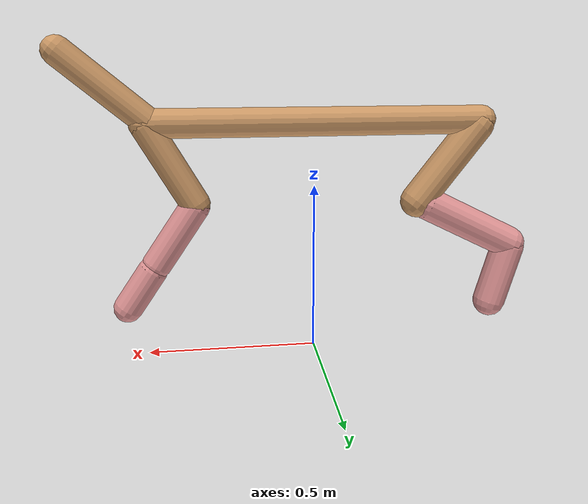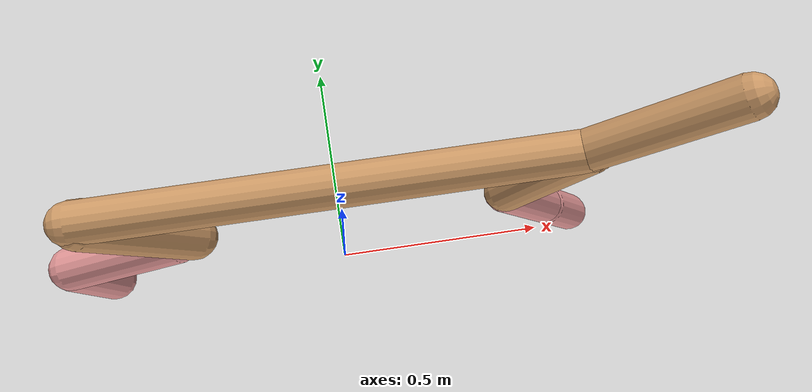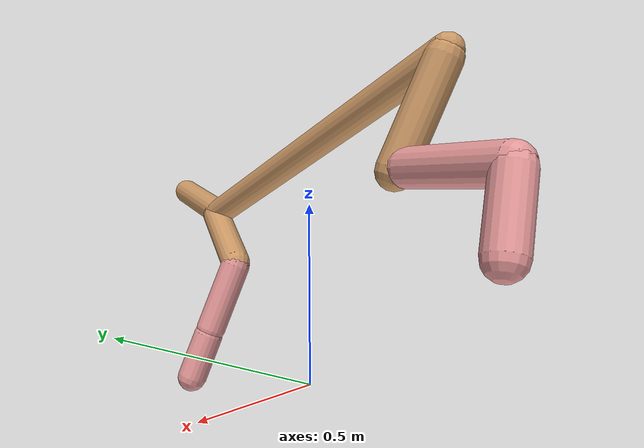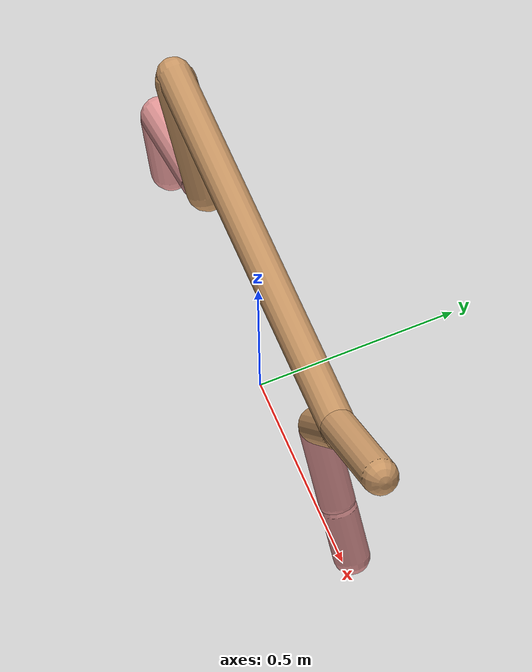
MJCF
<mujoco model="cheetah">
  <compiler angle="radian" coordinate="local" inertiafromgeom="true" settotalmass="14" />
  <default>
    <joint armature=".1" damping=".01" limited="true" solimplimit="0 .8 .03" solreflimit=".02 1" stiffness="8" />
    <geom conaffinity="0" condim="3" contype="1" friction="0.8 .1 .1" rgba="0.8 0.6 .4 1" solimp="0.0 0.8 0.01" solref="0.02 1" />
    <motor ctrllimited="true" ctrlrange="-1 1" />
  </default>
  <size nstack="300000" nuser_geom="1" />
  <option gravity="0 0 -9.81" timestep="0.01" />
  <worldbody>
    <body name="torso" pos="0.0 0.0 0.6878929719882558">
      <joint armature="0" axis="1 0 0" damping="0" limited="false" name="ignorex" pos="0 0 0" stiffness="0" type="slide" />
      <joint armature="0" axis="0 0 1" damping="0" limited="false" name="ignorez" pos="0 0 0" stiffness="0" type="slide" />
      <joint armature="0" axis="0 1 0" damping="0" limited="false" name="ignorey" pos="0 0 0" stiffness="0" type="hinge" />
      <geom fromto="-0.5 0.0 0.0 0.47986453482043556 0.0 0.0" name="torso" size="0.04226622839421597" type="capsule" />
      <geom axisangle="0 1 0 .87" name="head" pos="0.5798645348204355 0.0 0.1" size="0.04167315710623709 0.15" type="capsule" />

      <body name="bthigh" pos="-.5 0 0">
        <joint axis="0 1 0" damping="6" name="bthigh" pos="0 0 0" range="-.52 1.05" stiffness="240" type="hinge" />
        <geom axisangle="0 1 0 -3.8" name="bthigh" pos="0.09909291621796865 0.0 -0.12882079108335923" size="0.04946135999413521 0.1435122719816077" type="capsule" />
        <body name="bshin" pos="0.15818583243593728 0.0 -0.24764158216671844">
          <joint axis="0 1 0" damping="4.5" name="bshin" pos="0 0 0" range="-.785 .785" stiffness="180" type="hinge" />
          <geom axisangle="0 1 0 -2.03" name="bshin" pos="-0.1386234506284871 0.0 -0.06931172531424355" rgba="0.9 0.6 0.6 1" size="0.04946135999413521 0.14846097101545624" type="capsule" />
          <body name="bfoot" pos="-0.2772469012569742 0.0 -0.1386234506284871">
            <joint axis="0 1 0" damping="3" name="bfoot" pos="0 0 0" range="-.4 .785" stiffness="120" type="hinge" />
            <geom axisangle="0 1 0 -.27" name="bfoot" pos="0.029715031813617173 0.0 -0.09607860286402886" rgba="0.9 0.6 0.6 1" size="0.04946135999413521 0.09303554183635258" type="capsule" />
            <inertial mass="10" />
          </body>
        </body>
      </body>
      <body name="fthigh" pos="0.47986453482043556 0.0 0.0">
        <joint axis="0 1 0" damping="4.5" name="fthigh" pos="0 0 0" range="-1.5 0.8" stiffness="180" type="hinge" />
        <geom axisangle="0 1 0 .52" name="fthigh" pos="-0.06884400142204453 0.0 -0.11801828815207631" size="0.04342495463024928 0.13070576492912428" type="capsule" />
        <body name="fshin" pos="-0.13768800284408905 0.0 -0.23603657630415262">
          <joint axis="0 1 0" damping="3" name="fshin" pos="0 0 0" range="-1.2 1.1" stiffness="120" type="hinge" />
          <geom axisangle="0 1 0 -.6" name="fshin" pos="0.06392943748869627 0.0 -0.08851768267665637" rgba="0.9 0.6 0.6 1" size="0.04342495463024928 0.1041715118983998" type="capsule" />
          <body name="ffoot" pos="0.12785887497739254 0.0 -0.17703536535331274">
            <joint axis="0 1 0" damping="1.5" name="ffoot" pos="0 0 0" range="-3.1 -0.3" stiffness="60" type="hinge" />
            <geom axisangle="0 1 0 -.6" name="ffoot" pos="0.04434703945745594 0.0 -0.06898428360048701" rgba="0.9 0.6 0.6 1" size="0.04342495463024928 0.06879250785743384" type="capsule" />
            <inertial mass="10" />
          </body>
        </body>
      </body>
    </body>
  </worldbody>
  <actuator>
    <motor gear="120" joint="bthigh" name="bthigh" />
    <motor gear="90" joint="bshin" name="bshin" />
    <motor gear="60" joint="bfoot" name="bfoot" />
    <motor gear="120" joint="fthigh" name="fthigh" />
    <motor gear="60" joint="fshin" name="fshin" />
    <motor gear="30" joint="ffoot" name="ffoot" />
  </actuator>
</mujoco>
